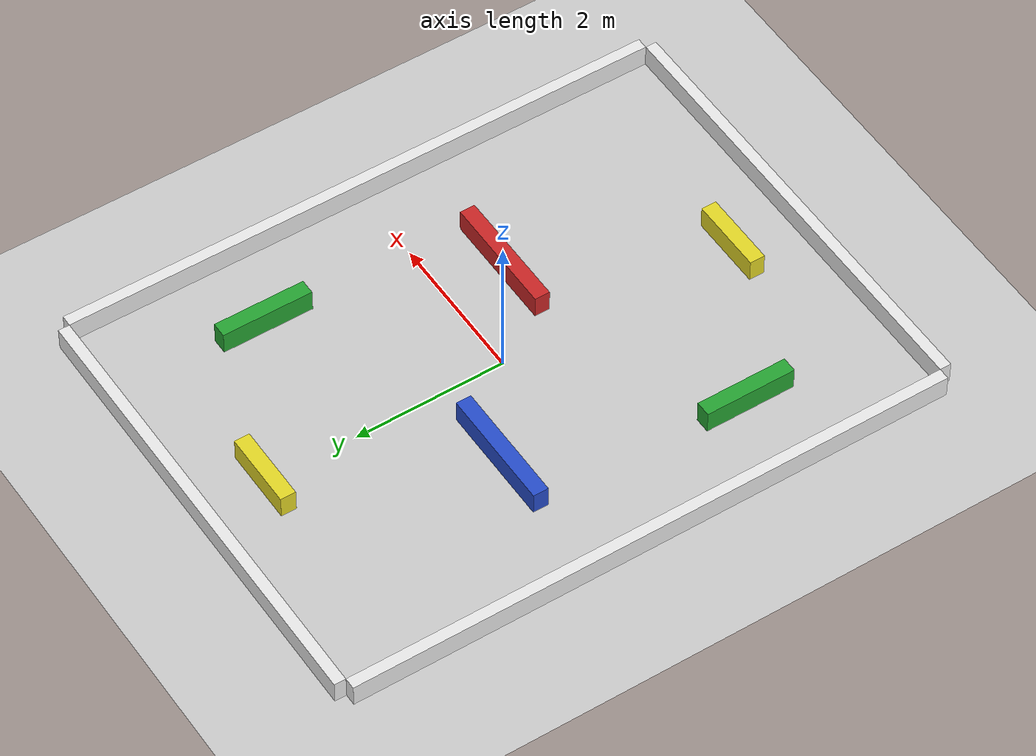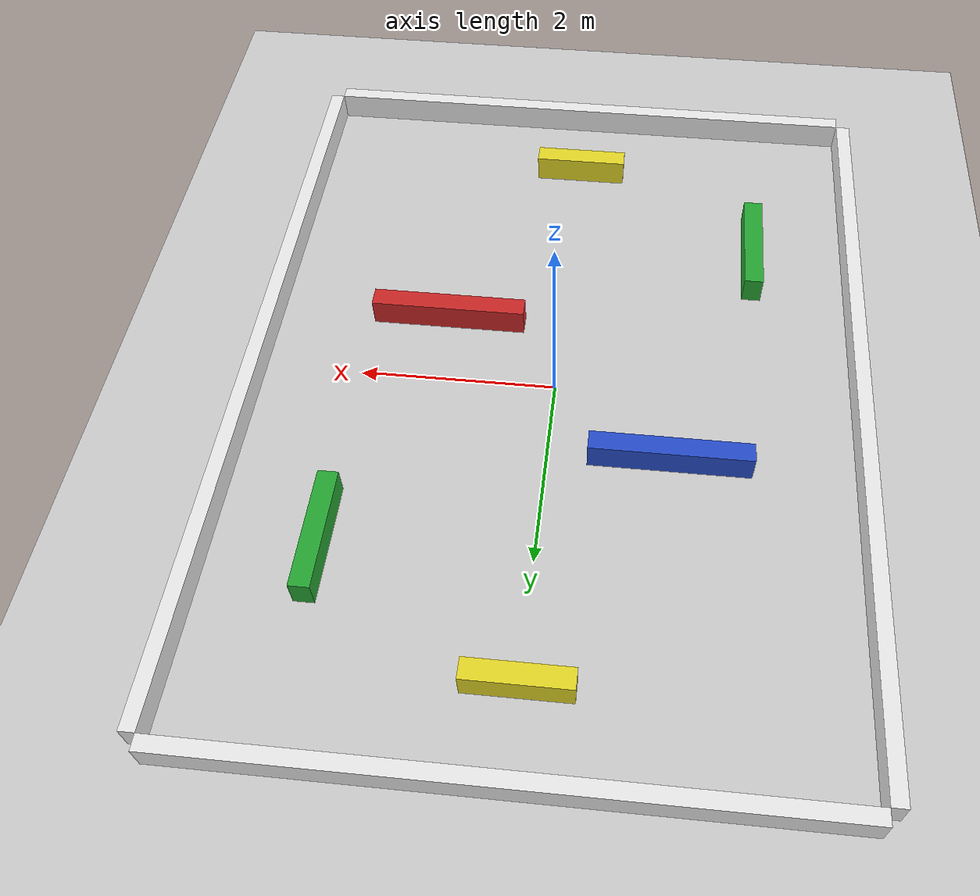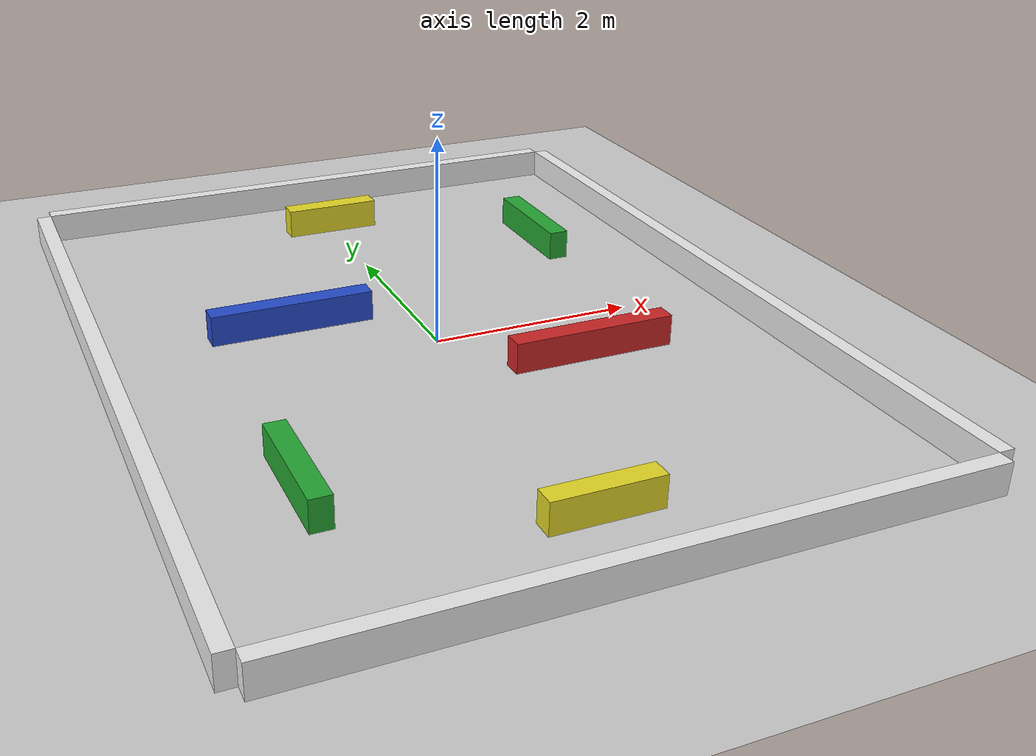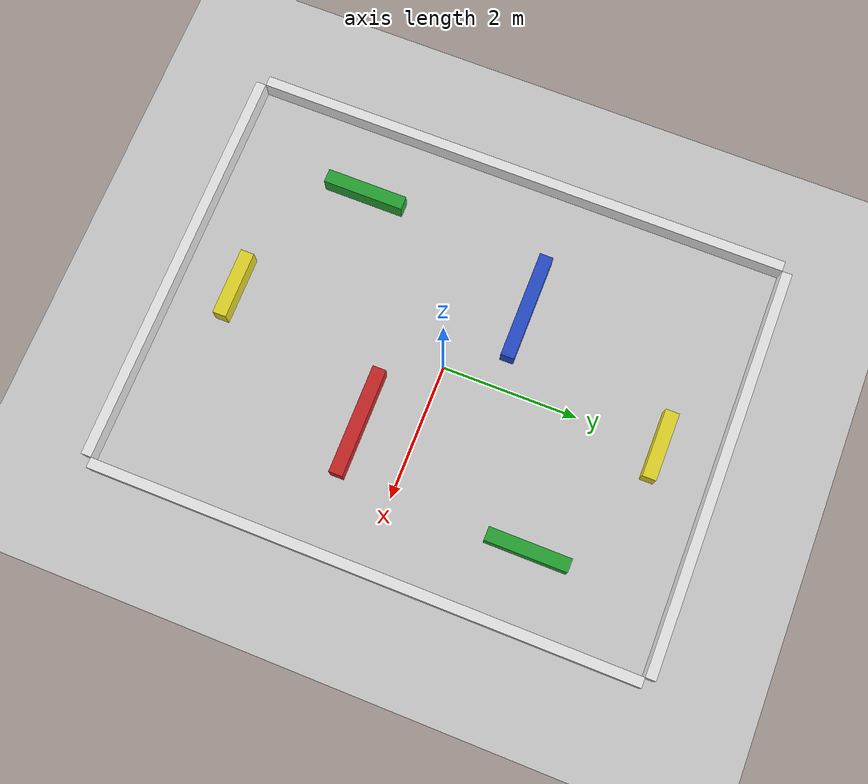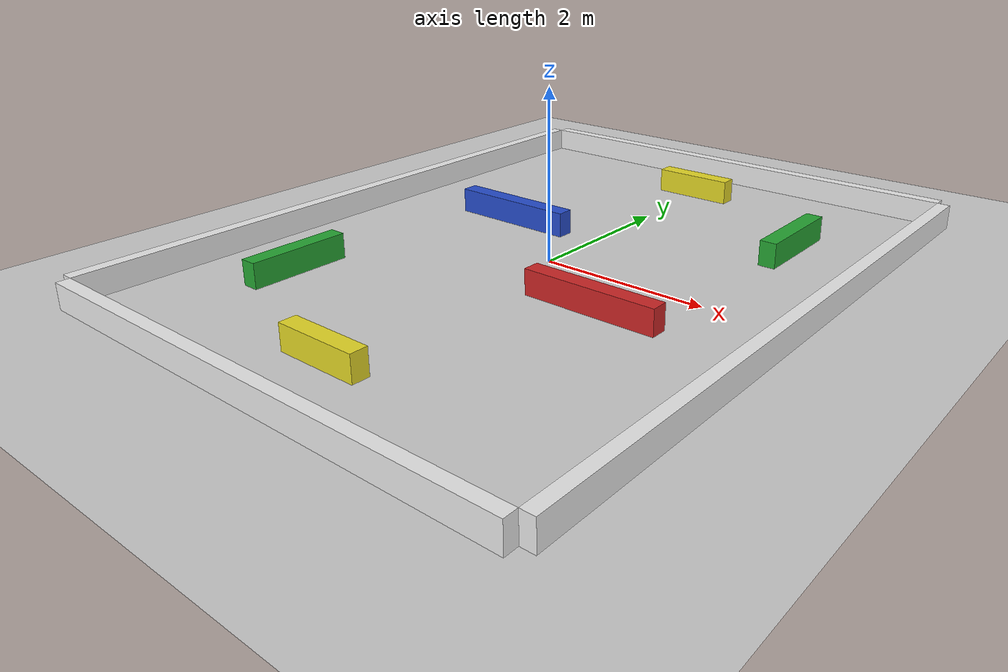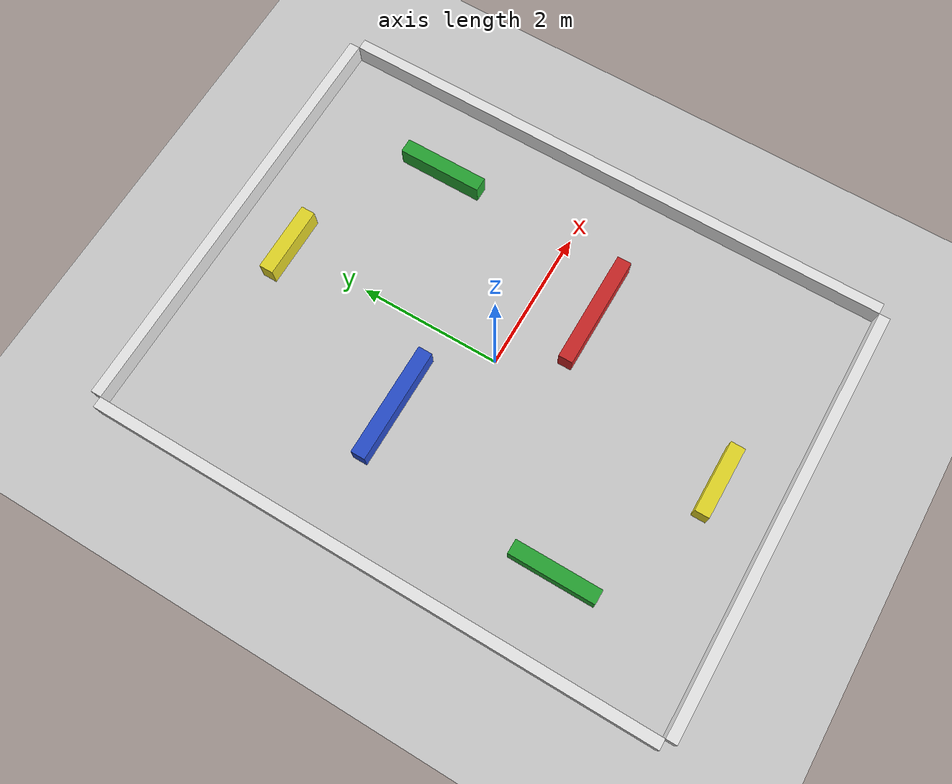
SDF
<?xml version='1.0'?>
<sdf version='1.6'>
  <world name='arena_6x8_v2'>
    <!-- 全局光照系统 -->
    <light name='sun' type='directional'>
      <cast_shadows>1</cast_shadows>
      <pose frame=''>0 0 10 0 -0 0</pose>
      <diffuse>0.8 0.8 0.8 1</diffuse>
      <specular>0.2 0.2 0.2 1</specular>
      <attenuation>
        <range>1000</range>
        <constant>0.9</constant>
        <linear>0.01</linear>
        <quadratic>0.001</quadratic>
      </attenuation>
      <direction>-0.5 0.1 -0.9</direction>
    </light>

    <!-- 地面平面 -->
    <model name='ground_plane'>
      <static>1</static>
      <link name='link'>
        <collision name='collision'>
          <geometry>
            <plane>
              <normal>0 0 1</normal>
              <size>100 100</size>
            </plane>
          </geometry>
          <surface>
            <contact>
              <collide_bitmask>65535</collide_bitmask>
              <ode/>
            </contact>
            <friction>
              <ode>
                <mu>100</mu>
                <mu2>50</mu2>
              </ode>
              <torsional>
                <ode/>
              </torsional>
            </friction>
            <bounce/>
          </surface>
          <max_contacts>10</max_contacts>
        </collision>
        <visual name='visual'>
          <cast_shadows>0</cast_shadows>
          <geometry>
            <plane>
              <normal>0 0 1</normal>
              <size>100 100</size>
            </plane>
          </geometry>
          <material>
            <script>
              <uri>file://media/materials/scripts/gazebo.material</uri>
              <name>Gazebo/Grey</name>
            </script>
          </material>
        </visual>
        <self_collide>0</self_collide>
        <enable_wind>0</enable_wind>
        <kinematic>0</kinematic>
      </link>
    </model>

    <!-- 物理与环境参数 -->
    <gravity>0 0 -9.8</gravity>
    <magnetic_field>6e-06 2.3e-05 -4.2e-05</magnetic_field>
    <atmosphere type='adiabatic'/>
    <physics name='default_physics' default='0' type='ode'>
      <max_step_size>0.001</max_step_size>
      <real_time_factor>1</real_time_factor>
      <real_time_update_rate>1000</real_time_update_rate>
    </physics>
    <scene>
      <ambient>0.4 0.4 0.4 1</ambient>
      <background>0.7 0.7 0.7 1</background>
      <shadows>1</shadows>
    </scene>

      <device>default</device>

    <wind/>
    <spherical_coordinates>
      <surface_model>EARTH_WGS84</surface_model>
      <latitude_deg>0</latitude_deg>
      <longitude_deg>0</longitude_deg>
      <elevation>0</elevation>
      <heading_deg>0</heading_deg>
    </spherical_coordinates>

    <!-- 6x8机器人对抗竞技场 - 优化版 v2.0 -->
    <!-- 内部可玩区域：X轴(-3m ~ +3m)，Y轴(-4m ~ +4m) -->
    <!-- 设计理念：开放式中心 + 对称掩护 + 多路线进攻 -->
    <model name='arena_6x8'>
      <pose frame=''>0 0 0 0 0 0</pose>

      <!-- 边界墙体 - 定义竞技场范围 -->
      <!-- 所有边界墙厚度0.15m，高度0.3m -->

      <!-- 北边界墙 (Y=+4.075m) -->
      <link name='Boundary_Wall_North'>
        <collision name='Boundary_Wall_North_Collision'>
          <geometry><box><size>6.0 0.15 0.3</size></box></geometry>
          <pose frame=''>0 0 0.15 0 0 0</pose>
        </collision>
        <visual name='Boundary_Wall_North_Visual'>
          <pose frame=''>0 0 0.15 0 0 0</pose>
          <geometry><box><size>6.0 0.15 0.3</size></box></geometry>
          <material>
            <script>
              <uri>file://media/materials/scripts/gazebo.material</uri>
              <name>Gazebo/White</name>
            </script>
          </material>
        </visual>
        <pose frame=''>0 4.075 0 0 0 0</pose>
      </link>

      <!-- 南边界墙 (Y=-4.075m) -->
      <link name='Boundary_Wall_South'>
        <collision name='Boundary_Wall_South_Collision'>
          <geometry><box><size>6.0 0.15 0.3</size></box></geometry>
          <pose frame=''>0 0 0.15 0 0 0</pose>
        </collision>
        <visual name='Boundary_Wall_South_Visual'>
          <pose frame=''>0 0 0.15 0 0 0</pose>
          <geometry><box><size>6.0 0.15 0.3</size></box></geometry>
          <material>
            <script>
              <uri>file://media/materials/scripts/gazebo.material</uri>
              <name>Gazebo/White</name>
            </script>
          </material>
        </visual>
        <pose frame=''>0 -4.075 0 0 0 0</pose>
      </link>

      <!-- 东边界墙 (X=+3.075m) -->
      <link name='Boundary_Wall_East'>
        <collision name='Boundary_Wall_East_Collision'>
          <geometry><box><size>0.15 8.0 0.3</size></box></geometry>
          <pose frame=''>0 0 0.15 0 0 0</pose>
        </collision>
        <visual name='Boundary_Wall_East_Visual'>
          <pose frame=''>0 0 0.15 0 0 0</pose>
          <geometry><box><size>0.15 8.0 0.3</size></box></geometry>
          <material>
            <script>
              <uri>file://media/materials/scripts/gazebo.material</uri>
              <name>Gazebo/White</name>
            </script>
          </material>
        </visual>
        <pose frame=''>3.075 0 0 0 0 0</pose>
      </link>

      <!-- 西边界墙 (X=-3.075m) -->
      <link name='Boundary_Wall_West'>
        <collision name='Boundary_Wall_West_Collision'>
          <geometry><box><size>0.15 8.0 0.3</size></box></geometry>
          <pose frame=''>0 0 0.15 0 0 0</pose>
        </collision>
        <visual name='Boundary_Wall_West_Visual'>
          <pose frame=''>0 0 0.15 0 0 0</pose>
          <geometry><box><size>0.15 8.0 0.3</size></box></geometry>
          <material>
            <script>
              <uri>file://media/materials/scripts/gazebo.material</uri>
              <name>Gazebo/White</name>
            </script>
          </material>
        </visual>
        <pose frame=''>-3.075 0 0 0 0 0</pose>
      </link>

      <!-- 中央战术区域 - 主要交火区 -->
      <!-- 设计了3条主要进攻通道：左路、中路、右路 -->
      <!-- 中央通道最宽(约2.4m)，适合快速推进 -->
      <!-- 左右通道较窄(约1.2m)，适合侧翼包抄 -->

      <!-- 中央左掩护墙 - 保护左路进攻 -->
      <link name='Central_Cover_Left'>
        <collision name='Central_Cover_Left_Collision'>
          <geometry><box><size>1.6 0.2 0.3</size></box></geometry>
          <pose frame=''>0 0 0.15 0 0 0</pose>
        </collision>
        <visual name='Central_Cover_Left_Visual'>
          <pose frame=''>0 0 0.15 0 0 0</pose>
          <geometry><box><size>1.6 0.2 0.3</size></box></geometry>
          <material>
            <script>
              <uri>file://media/materials/scripts/gazebo.material</uri>
              <name>Gazebo/Blue</name>
            </script>
          </material>
        </visual>
        <pose frame=''>-1.2 0.8 0 0 0 0</pose>
      </link>

      <!-- 中央右掩护墙 - 保护右路进攻 -->
      <link name='Central_Cover_Right'>
        <collision name='Central_Cover_Right_Collision'>
          <geometry><box><size>1.6 0.2 0.3</size></box></geometry>
          <pose frame=''>0 0 0.15 0 0 0</pose>
        </collision>
        <visual name='Central_Cover_Right_Visual'>
          <pose frame=''>0 0 0.15 0 0 0</pose>
          <geometry><box><size>1.6 0.2 0.3</size></box></geometry>
          <material>
            <script>
              <uri>file://media/materials/scripts/gazebo.material</uri>
              <name>Gazebo/Red</name>
            </script>
          </material>
        </visual>
        <pose frame=''>1.2 -0.8 0 0 0 0</pose>
      </link>

      <!-- 侧翼掩护区域 - 用于迂回和防守 -->
      <!-- 每个半场都有独立的掩护点，方便团队配合 -->

      <!-- 北半场左掩护点 -->

      <!-- 北半场右掩护点 -->
      <link name='Flank_Cover_North_Right'>
        <collision name='Flank_Cover_North_Right_Collision'>
          <geometry><box><size>0.2 1.2 0.3</size></box></geometry>
          <pose frame=''>0 0 0.15 0 0 0</pose>
        </collision>
        <visual name='Flank_Cover_North_Right_Visual'>
          <pose frame=''>0 0 0.15 0 0 0</pose>
          <geometry><box><size>0.2 1.2 0.3</size></box></geometry>
          <material>
            <script>
              <uri>file://media/materials/scripts/gazebo.material</uri>
              <name>Gazebo/Green</name>
            </script>
          </material>
        </visual>
        <pose frame=''>2.0 2.0 0 0 0 0</pose>
      </link>

      <!-- 南半场左掩护点 -->
      <link name='Flank_Cover_South_Left'>
        <collision name='Flank_Cover_South_Left_Collision'>
          <geometry><box><size>0.2 1.2 0.3</size></box></geometry>
          <pose frame=''>0 0 0.15 0 0 0</pose>
        </collision>
        <visual name='Flank_Cover_South_Left_Visual'>
          <pose frame=''>0 0 0.15 0 0 0</pose>
          <geometry><box><size>0.2 1.2 0.3</size></box></geometry>
          <material>
            <script>
              <uri>file://media/materials/scripts/gazebo.material</uri>
              <name>Gazebo/Green</name>
            </script>
          </material>
        </visual>
        <pose frame=''>-2.0 -2.0 0 0 0 0</pose>
      </link>

      <!-- 南半场右掩护点 -->

      <!-- 出生点掩护 - 保护双方初始位置 -->
      <!-- 防止开局被直接秒杀 -->

      <!-- 北出生点中央掩护 -->
      <link name='Spawn_Cover_North'>
        <collision name='Spawn_Cover_North_Collision'>
          <geometry><box><size>1.0 0.2 0.3</size></box></geometry>
          <pose frame=''>0 0 0.15 0 0 0</pose>
        </collision>
        <visual name='Spawn_Cover_North_Visual'>
          <pose frame=''>0 0 0.15 0 0 0</pose>
          <geometry><box><size>1.0 0.2 0.3</size></box></geometry>
          <material>
            <script>
              <uri>file://media/materials/scripts/gazebo.material</uri>
              <name>Gazebo/Yellow</name>
            </script>
          </material>
        </visual>
        <pose frame=''>0 3.2 0 0 0 0</pose>
      </link>

      <!-- 南出生点中央掩护 -->
      <link name='Spawn_Cover_South'>
        <collision name='Spawn_Cover_South_Collision'>
          <geometry><box><size>1.0 0.2 0.3</size></box></geometry>
          <pose frame=''>0 0 0.15 0 0 0</pose>
        </collision>
        <visual name='Spawn_Cover_South_Visual'>
          <pose frame=''>0 0 0.15 0 0 0</pose>
          <geometry><box><size>1.0 0.2 0.3</size></box></geometry>
          <material>
            <script>
              <uri>file://media/materials/scripts/gazebo.material</uri>
              <name>Gazebo/Yellow</name>
            </script>
          </material>
        </visual>
        <pose frame=''>0 -3.2 0 0 0 0</pose>
      </link>

      <static>1</static>
    </model>

    <!-- GUI相机初始位置 - 俯视整个竞技场 -->
    <gui fullscreen='0'>
      <camera name='user_camera'>
        <pose frame=''>-8 0 6 0 0.3 0</pose>
        <view_controller>orbit</view_controller>
        <projection_type>perspective</projection_type>
      </camera>
    </gui>
  </world>
</sdf>
